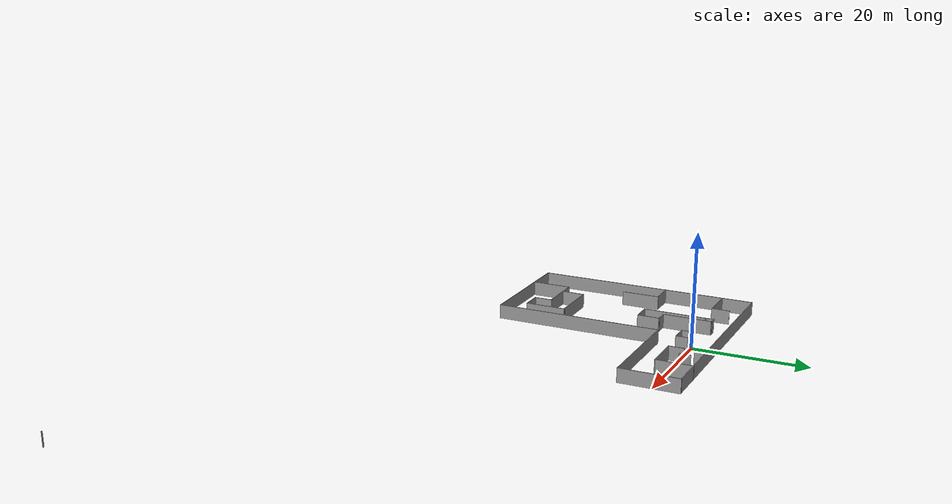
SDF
<?xml version='1.0'?>
<sdf version='1.7'>
  <model name='arena'>
    <pose>28.6745 -32.0851 0 0 -0 0</pose>
    <link name='Wall_1'>
      <collision name='Wall_1_Collision'>
        <geometry>
          <box>
            <size>0.16 0.15 2.5</size>
          </box>
        </geometry>
        <pose>0 0 1.25 0 -0 0</pose>
      </collision>
      <visual name='Wall_1_Visual'>
        <pose>0 0 1.25 0 -0 0</pose>
        <geometry>
          <box>
            <size>0.16 0.15 2.5</size>
          </box>
        </geometry>
        <material>
          <script>
            <uri>file://media/materials/scripts/gazebo.material</uri>
            <name>Gazebo/Grey</name>
          </script>
          <ambient>1 1 1 1</ambient>
        </material>
        <meta>
          <layer>0</layer>
        </meta>
      </visual>
      <pose>49.7622 -36.6706 0 0 -0 0</pose>
    </link>
    <link name='Wall_10'>
      <collision name='Wall_10_Collision'>
        <geometry>
          <box>
            <size>21.5 0.15 2.5</size>
          </box>
        </geometry>
        <pose>0 0 1.25 0 -0 0</pose>
      </collision>
      <visual name='Wall_10_Visual'>
        <pose>0 0 1.25 0 -0 0</pose>
        <geometry>
          <box>
            <size>21.5 0.15 2.5</size>
          </box>
        </geometry>
        <material>
          <script>
            <uri>file://media/materials/scripts/gazebo.material</uri>
            <name>Gazebo/Grey</name>
          </script>
          <ambient>1 1 1 1</ambient>
        </material>
        <meta>
          <layer>0</layer>
        </meta>
      </visual>
      <pose>-38.9557 -3.08205 0 0 -0 0</pose>
    </link>
    <link name='Wall_11'>
      <collision name='Wall_11_Collision'>
        <geometry>
          <box>
            <size>29.5 0.15 2.5</size>
          </box>
        </geometry>
        <pose>0 0 1.25 0 -0 0</pose>
      </collision>
      <visual name='Wall_11_Visual'>
        <pose>0 0 1.25 0 -0 0</pose>
        <geometry>
          <box>
            <size>29.5 0.15 2.5</size>
          </box>
        </geometry>
        <material>
          <script>
            <uri>file://media/materials/scripts/gazebo.material</uri>
            <name>Gazebo/Grey</name>
          </script>
          <ambient>1 1 1 1</ambient>
        </material>
        <meta>
          <layer>0</layer>
        </meta>
      </visual>
      <pose>-28.2807 11.5929 0 0 -0 1.5708</pose>
    </link>
    <link name='Wall_12'>
      <collision name='Wall_12_Collision'>
        <geometry>
          <box>
            <size>19.65 0.15 2.5</size>
          </box>
        </geometry>
        <pose>0 0 1.25 0 -0 0</pose>
      </collision>
      <visual name='Wall_12_Visual'>
        <pose>0 0 1.25 0 -0 0</pose>
        <geometry>
          <box>
            <size>19.65 0.15 2.5</size>
          </box>
        </geometry>
        <material>
          <script>
            <uri>file://media/materials/scripts/gazebo.material</uri>
            <name>Gazebo/Grey</name>
          </script>
          <ambient>1 1 1 1</ambient>
        </material>
        <meta>
          <layer>0</layer>
        </meta>
      </visual>
      <pose>-18.5307 26.2679 0 0 -0 0</pose>
    </link>
    <link name='Wall_15'>
      <collision name='Wall_15_Collision'>
        <geometry>
          <box>
            <size>6.5 0.15 2.5</size>
          </box>
        </geometry>
        <pose>0 0 1.25 0 -0 0</pose>
      </collision>
      <visual name='Wall_15_Visual'>
        <pose>0 0 1.25 0 -0 0</pose>
        <geometry>
          <box>
            <size>6.5 0.15 2.5</size>
          </box>
        </geometry>
        <material>
          <script>
            <uri>file://media/materials/scripts/gazebo.material</uri>
            <name>Gazebo/Grey</name>
          </script>
          <ambient>1 1 1 1</ambient>
        </material>
        <meta>
          <layer>0</layer>
        </meta>
      </visual>
      <pose>-14.8694 33.4956 0 0 -0 -1.5708</pose>
    </link>
    <link name='Wall_16'>
      <collision name='Wall_16_Collision'>
        <geometry>
          <box>
            <size>7 0.15 2.5</size>
          </box>
        </geometry>
        <pose>0 0 1.25 0 -0 0</pose>
      </collision>
      <visual name='Wall_16_Visual'>
        <pose>0 0 1.25 0 -0 0</pose>
        <geometry>
          <box>
            <size>7 0.15 2.5</size>
          </box>
        </geometry>
        <material>
          <script>
            <uri>file://media/materials/scripts/gazebo.material</uri>
            <name>Gazebo/Grey</name>
          </script>
          <ambient>1 1 1 1</ambient>
        </material>
        <meta>
          <layer>0</layer>
        </meta>
      </visual>
      <pose>-18.2944 30.3206 0 0 -0 3.14159</pose>
    </link>
    <link name='Wall_17'>
      <collision name='Wall_17_Collision'>
        <geometry>
          <box>
            <size>2.75 0.15 2.5</size>
          </box>
        </geometry>
        <pose>0 0 1.25 0 -0 0</pose>
      </collision>
      <visual name='Wall_17_Visual'>
        <pose>0 0 1.25 0 -0 0</pose>
        <geometry>
          <box>
            <size>2.75 0.15 2.5</size>
          </box>
        </geometry>
        <material>
          <script>
            <uri>file://media/materials/scripts/gazebo.material</uri>
            <name>Gazebo/Grey</name>
          </script>
          <ambient>1 1 1 1</ambient>
        </material>
        <meta>
          <layer>0</layer>
        </meta>
      </visual>
      <pose>-21.7194 31.6206 0 0 -0 1.5708</pose>
    </link>
    <link name='Wall_19'>
      <collision name='Wall_19_Collision'>
        <geometry>
          <box>
            <size>2 0.15 2.5</size>
          </box>
        </geometry>
        <pose>0 0 1.25 0 -0 0</pose>
      </collision>
      <visual name='Wall_19_Visual'>
        <pose>0 0 1.25 0 -0 0</pose>
        <geometry>
          <box>
            <size>2 0.15 2.5</size>
          </box>
        </geometry>
        <material>
          <script>
            <uri>file://media/materials/scripts/gazebo.material</uri>
            <name>Gazebo/Grey</name>
          </script>
          <ambient>1 1 1 1</ambient>
        </material>
        <meta>
          <layer>0</layer>
        </meta>
      </visual>
      <pose>-21.8804 35.6133 0 0 -0 -1.5708</pose>
    </link>
    <link name='Wall_21'>
      <collision name='Wall_21_Collision'>
        <geometry>
          <box>
            <size>2 0.15 2.5</size>
          </box>
        </geometry>
        <pose>0 0 1.25 0 -0 0</pose>
      </collision>
      <visual name='Wall_21_Visual'>
        <pose>0 0 1.25 0 -0 0</pose>
        <geometry>
          <box>
            <size>2 0.15 2.5</size>
          </box>
        </geometry>
        <material>
          <script>
            <uri>file://media/materials/scripts/gazebo.material</uri>
            <name>Gazebo/Grey</name>
          </script>
          <ambient>1 1 1 1</ambient>
        </material>
        <meta>
          <layer>0</layer>
        </meta>
      </visual>
      <pose>-19.2082 33.8652 0 0 -0 1.5708</pose>
    </link>
    <link name='Wall_22'>
      <collision name='Wall_22_Collision'>
        <geometry>
          <box>
            <size>2 0.15 2.5</size>
          </box>
        </geometry>
        <pose>0 0 1.25 0 -0 0</pose>
      </collision>
      <visual name='Wall_22_Visual'>
        <pose>0 0 1.25 0 -0 0</pose>
        <geometry>
          <box>
            <size>2 0.15 2.5</size>
          </box>
        </geometry>
        <material>
          <script>
            <uri>file://media/materials/scripts/gazebo.material</uri>
            <name>Gazebo/Grey</name>
          </script>
          <ambient>1 1 1 1</ambient>
        </material>
        <meta>
          <layer>0</layer>
        </meta>
      </visual>
      <pose>-18.5542 34.1362 0 0 -0 -0.785398</pose>
    </link>
    <link name='Wall_23'>
      <collision name='Wall_23_Collision'>
        <geometry>
          <box>
            <size>1.56593 0.15 2.5</size>
          </box>
        </geometry>
        <pose>0 0 1.25 0 -0 0</pose>
      </collision>
      <visual name='Wall_23_Visual'>
        <pose>0 0 1.25 0 -0 0</pose>
        <geometry>
          <box>
            <size>1.56593 0.15 2.5</size>
          </box>
        </geometry>
        <material>
          <script>
            <uri>file://media/materials/scripts/gazebo.material</uri>
            <name>Gazebo/Grey</name>
          </script>
          <ambient>1 1 1 1</ambient>
        </material>
        <meta>
          <layer>0</layer>
        </meta>
      </visual>
      <pose>-18.5542 33.2112 0 0 -0 -2.74889</pose>
    </link>
    <link name='Wall_25'>
      <collision name='Wall_25_Collision'>
        <geometry>
          <box>
            <size>2.25 0.15 2.5</size>
          </box>
        </geometry>
        <pose>0 0 1.25 0 -0 0</pose>
      </collision>
      <visual name='Wall_25_Visual'>
        <pose>0 0 1.25 0 -0 0</pose>
        <geometry>
          <box>
            <size>2.25 0.15 2.5</size>
          </box>
        </geometry>
        <material>
          <script>
            <uri>file://media/materials/scripts/gazebo.material</uri>
            <name>Gazebo/Grey</name>
          </script>
          <ambient>1 1 1 1</ambient>
        </material>
        <meta>
          <layer>0</layer>
        </meta>
      </visual>
      <pose>-29.9086 30.9533 0 0 -0 -1.5708</pose>
    </link>
    <link name='Wall_26'>
      <collision name='Wall_26_Collision'>
        <geometry>
          <box>
            <size>3.25 0.15 2.5</size>
          </box>
        </geometry>
        <pose>0 0 1.25 0 -0 0</pose>
      </collision>
      <visual name='Wall_26_Visual'>
        <pose>0 0 1.25 0 -0 0</pose>
        <geometry>
          <box>
            <size>3.25 0.15 2.5</size>
          </box>
        </geometry>
        <material>
          <script>
            <uri>file://media/materials/scripts/gazebo.material</uri>
            <name>Gazebo/Grey</name>
          </script>
          <ambient>1 1 1 1</ambient>
        </material>
        <meta>
          <layer>0</layer>
        </meta>
      </visual>
      <pose>-28.3586 29.9033 0 0 -0 0</pose>
    </link>
    <link name='Wall_27'>
      <collision name='Wall_27_Collision'>
        <geometry>
          <box>
            <size>2.25 0.15 2.5</size>
          </box>
        </geometry>
        <pose>0 0 1.25 0 -0 0</pose>
      </collision>
      <visual name='Wall_27_Visual'>
        <pose>0 0 1.25 0 -0 0</pose>
        <geometry>
          <box>
            <size>2.25 0.15 2.5</size>
          </box>
        </geometry>
        <material>
          <script>
            <uri>file://media/materials/scripts/gazebo.material</uri>
            <name>Gazebo/Grey</name>
          </script>
          <ambient>1 1 1 1</ambient>
        </material>
        <meta>
          <layer>0</layer>
        </meta>
      </visual>
      <pose>-26.8086 30.9533 0 0 -0 1.5708</pose>
    </link>
    <link name='Wall_28'>
      <collision name='Wall_28_Collision'>
        <geometry>
          <box>
            <size>3.25 0.15 2.5</size>
          </box>
        </geometry>
        <pose>0 0 1.25 0 -0 0</pose>
      </collision>
      <visual name='Wall_28_Visual'>
        <pose>0 0 1.25 0 -0 0</pose>
        <geometry>
          <box>
            <size>3.25 0.15 2.5</size>
          </box>
        </geometry>
        <material>
          <script>
            <uri>file://media/materials/scripts/gazebo.material</uri>
            <name>Gazebo/Grey</name>
          </script>
          <ambient>1 1 1 1</ambient>
        </material>
        <meta>
          <layer>0</layer>
        </meta>
      </visual>
      <pose>-28.3586 32.0033 0 0 -0 3.14159</pose>
    </link>
    <link name='Wall_30'>
      <collision name='Wall_30_Collision'>
        <geometry>
          <box>
            <size>6.5 0.15 2.5</size>
          </box>
        </geometry>
        <pose>0 0 1.25 0 -0 0</pose>
      </collision>
      <visual name='Wall_30_Visual'>
        <pose>0 0 1.25 0 -0 0</pose>
        <geometry>
          <box>
            <size>6.5 0.15 2.5</size>
          </box>
        </geometry>
        <material>
          <script>
            <uri>file://media/materials/scripts/gazebo.material</uri>
            <name>Gazebo/Grey</name>
          </script>
          <ambient>1 1 1 1</ambient>
        </material>
        <meta>
          <layer>0</layer>
        </meta>
      </visual>
      <pose>-46.3973 31.1636 0 0 -0 0</pose>
    </link>
    <link name='Wall_31'>
      <collision name='Wall_31_Collision'>
        <geometry>
          <box>
            <size>3.25 0.15 2.5</size>
          </box>
        </geometry>
        <pose>0 0 1.25 0 -0 0</pose>
      </collision>
      <visual name='Wall_31_Visual'>
        <pose>0 0 1.25 0 -0 0</pose>
        <geometry>
          <box>
            <size>3.25 0.15 2.5</size>
          </box>
        </geometry>
        <material>
          <script>
            <uri>file://media/materials/scripts/gazebo.material</uri>
            <name>Gazebo/Grey</name>
          </script>
          <ambient>1 1 1 1</ambient>
        </material>
        <meta>
          <layer>0</layer>
        </meta>
      </visual>
      <pose>-43.2223 32.7136 0 0 -0 1.5708</pose>
    </link>
    <link name='Wall_33'>
      <collision name='Wall_33_Collision'>
        <geometry>
          <box>
            <size>11.25 0.15 2.5</size>
          </box>
        </geometry>
        <pose>0 0 1.25 0 -0 0</pose>
      </collision>
      <visual name='Wall_33_Visual'>
        <pose>0 0 1.25 0 -0 0</pose>
        <geometry>
          <box>
            <size>11.25 0.15 2.5</size>
          </box>
        </geometry>
        <material>
          <script>
            <uri>file://media/materials/scripts/gazebo.material</uri>
            <name>Gazebo/Grey</name>
          </script>
          <ambient>1 1 1 1</ambient>
        </material>
        <meta>
          <layer>0</layer>
        </meta>
      </visual>
      <pose>-37.6341 26.1853 0 0 -0 -1.5708</pose>
    </link>
    <link name='Wall_34'>
      <collision name='Wall_34_Collision'>
        <geometry>
          <box>
            <size>3.75 0.15 2.5</size>
          </box>
        </geometry>
        <pose>0 0 1.25 0 -0 0</pose>
      </collision>
      <visual name='Wall_34_Visual'>
        <pose>0 0 1.25 0 -0 0</pose>
        <geometry>
          <box>
            <size>3.75 0.15 2.5</size>
          </box>
        </geometry>
        <material>
          <script>
            <uri>file://media/materials/scripts/gazebo.material</uri>
            <name>Gazebo/Grey</name>
          </script>
          <ambient>1 1 1 1</ambient>
        </material>
        <meta>
          <layer>0</layer>
        </meta>
      </visual>
      <pose>-35.8341 20.6353 0 0 -0 0</pose>
    </link>
    <link name='Wall_35'>
      <collision name='Wall_35_Collision'>
        <geometry>
          <box>
            <size>4 0.15 2.5</size>
          </box>
        </geometry>
        <pose>0 0 1.25 0 -0 0</pose>
      </collision>
      <visual name='Wall_35_Visual'>
        <pose>0 0 1.25 0 -0 0</pose>
        <geometry>
          <box>
            <size>4 0.15 2.5</size>
          </box>
        </geometry>
        <material>
          <script>
            <uri>file://media/materials/scripts/gazebo.material</uri>
            <name>Gazebo/Grey</name>
          </script>
          <ambient>1 1 1 1</ambient>
        </material>
        <meta>
          <layer>0</layer>
        </meta>
      </visual>
      <pose>-34.0341 22.5603 0 0 -0 1.5708</pose>
    </link>
    <link name='Wall_36'>
      <collision name='Wall_36_Collision'>
        <geometry>
          <box>
            <size>2.5 0.15 2.5</size>
          </box>
        </geometry>
        <pose>0 0 1.25 0 -0 0</pose>
      </collision>
      <visual name='Wall_36_Visual'>
        <pose>0 0 1.25 0 -0 0</pose>
        <geometry>
          <box>
            <size>2.5 0.15 2.5</size>
          </box>
        </geometry>
        <material>
          <script>
            <uri>file://media/materials/scripts/gazebo.material</uri>
            <name>Gazebo/Grey</name>
          </script>
          <ambient>1 1 1 1</ambient>
        </material>
        <meta>
          <layer>0</layer>
        </meta>
      </visual>
      <pose>-35.2091 24.4853 0 0 -0 3.14159</pose>
    </link>
    <link name='Wall_37'>
      <collision name='Wall_37_Collision'>
        <geometry>
          <box>
            <size>8.75 0.15 2.5</size>
          </box>
        </geometry>
        <pose>0 0 1.25 0 -0 0</pose>
      </collision>
      <visual name='Wall_37_Visual'>
        <pose>0 0 1.25 0 -0 0</pose>
        <geometry>
          <box>
            <size>8.75 0.15 2.5</size>
          </box>
        </geometry>
        <material>
          <script>
            <uri>file://media/materials/scripts/gazebo.material</uri>
            <name>Gazebo/Grey</name>
          </script>
          <ambient>1 1 1 1</ambient>
        </material>
        <meta>
          <layer>0</layer>
        </meta>
      </visual>
      <pose>-36.3841 28.7853 0 0 -0 1.5708</pose>
    </link>
    <link name='Wall_38'>
      <collision name='Wall_38_Collision'>
        <geometry>
          <box>
            <size>1.5 0.15 2.5</size>
          </box>
        </geometry>
        <pose>0 0 1.25 0 -0 0</pose>
      </collision>
      <visual name='Wall_38_Visual'>
        <pose>0 0 1.25 0 -0 0</pose>
        <geometry>
          <box>
            <size>1.5 0.15 2.5</size>
          </box>
        </geometry>
        <material>
          <script>
            <uri>file://media/materials/scripts/gazebo.material</uri>
            <name>Gazebo/Grey</name>
          </script>
          <ambient>1 1 1 1</ambient>
        </material>
        <meta>
          <layer>0</layer>
        </meta>
      </visual>
      <pose>-37.0591 33.0853 0 0 -0 3.14159</pose>
    </link>
    <link name='Wall_39'>
      <collision name='Wall_39_Collision'>
        <geometry>
          <box>
            <size>1.5037 0.15 2.5</size>
          </box>
        </geometry>
        <pose>0 0 1.25 0 -0 0</pose>
      </collision>
      <visual name='Wall_39_Visual'>
        <pose>0 0 1.25 0 -0 0</pose>
        <geometry>
          <box>
            <size>1.5037 0.15 2.5</size>
          </box>
        </geometry>
        <material>
          <script>
            <uri>file://media/materials/scripts/gazebo.material</uri>
            <name>Gazebo/Grey</name>
          </script>
          <ambient>1 1 1 1</ambient>
        </material>
        <meta>
          <layer>0</layer>
        </meta>
      </visual>
      <pose>-37.6841 32.4103 0 0 -0 -1.49686</pose>
    </link>
    <link name='Wall_4'>
      <collision name='Wall_4_Collision'>
        <geometry>
          <box>
            <size>10.5 0.15 2.5</size>
          </box>
        </geometry>
        <pose>0 0 1.25 0 -0 0</pose>
      </collision>
      <visual name='Wall_4_Visual'>
        <pose>0 0 1.25 0 -0 0</pose>
        <geometry>
          <box>
            <size>10.5 0.15 2.5</size>
          </box>
        </geometry>
        <material>
          <script>
            <uri>file://media/materials/scripts/gazebo.material</uri>
            <name>Gazebo/Grey</name>
          </script>
          <ambient>1 1 1 1</ambient>
        </material>
        <meta>
          <layer>0</layer>
        </meta>
      </visual>
      <pose>-8.78066 31.4429 0 0 -0 1.5708</pose>
    </link>
    <link name='Wall_42'>
      <collision name='Wall_42_Collision'>
        <geometry>
          <box>
            <size>7 0.15 2.5</size>
          </box>
        </geometry>
        <pose>0 0 1.25 0 -0 0</pose>
      </collision>
      <visual name='Wall_42_Visual'>
        <pose>0 0 1.25 0 -0 0</pose>
        <geometry>
          <box>
            <size>7 0.15 2.5</size>
          </box>
        </geometry>
        <material>
          <script>
            <uri>file://media/materials/scripts/gazebo.material</uri>
            <name>Gazebo/Grey</name>
          </script>
          <ambient>1 1 1 1</ambient>
        </material>
        <meta>
          <layer>0</layer>
        </meta>
      </visual>
      <pose>-43.2222 0.439476 0 0 -0 1.5708</pose>
    </link>
    <link name='Wall_43'>
      <collision name='Wall_43_Collision'>
        <geometry>
          <box>
            <size>8.5 0.15 2.5</size>
          </box>
        </geometry>
        <pose>0 0 1.25 0 -0 0</pose>
      </collision>
      <visual name='Wall_43_Visual'>
        <pose>0 0 1.25 0 -0 0</pose>
        <geometry>
          <box>
            <size>8.5 0.15 2.5</size>
          </box>
        </geometry>
        <material>
          <script>
            <uri>file://media/materials/scripts/gazebo.material</uri>
            <name>Gazebo/Grey</name>
          </script>
          <ambient>1 1 1 1</ambient>
        </material>
        <meta>
          <layer>0</layer>
        </meta>
      </visual>
      <pose>-39.0472 3.86448 0 0 -0 0</pose>
    </link>
    <link name='Wall_44'>
      <collision name='Wall_44_Collision'>
        <geometry>
          <box>
            <size>3.25 0.15 2.5</size>
          </box>
        </geometry>
        <pose>0 0 1.25 0 -0 0</pose>
      </collision>
      <visual name='Wall_44_Visual'>
        <pose>0 0 1.25 0 -0 0</pose>
        <geometry>
          <box>
            <size>3.25 0.15 2.5</size>
          </box>
        </geometry>
        <material>
          <script>
            <uri>file://media/materials/scripts/gazebo.material</uri>
            <name>Gazebo/Grey</name>
          </script>
          <ambient>1 1 1 1</ambient>
        </material>
        <meta>
          <layer>0</layer>
        </meta>
      </visual>
      <pose>-34.8722 2.31448 0 0 -0 -1.5708</pose>
    </link>
    <link name='Wall_45'>
      <collision name='Wall_45_Collision'>
        <geometry>
          <box>
            <size>3.75 0.15 2.5</size>
          </box>
        </geometry>
        <pose>0 0 1.25 0 -0 0</pose>
      </collision>
      <visual name='Wall_45_Visual'>
        <pose>0 0 1.25 0 -0 0</pose>
        <geometry>
          <box>
            <size>3.75 0.15 2.5</size>
          </box>
        </geometry>
        <material>
          <script>
            <uri>file://media/materials/scripts/gazebo.material</uri>
            <name>Gazebo/Grey</name>
          </script>
          <ambient>1 1 1 1</ambient>
        </material>
        <meta>
          <layer>0</layer>
        </meta>
      </visual>
      <pose>-33.0722 0.764477 0 0 -0 0</pose>
    </link>
    <link name='Wall_46'>
      <collision name='Wall_46_Collision'>
        <geometry>
          <box>
            <size>7.25 0.15 2.5</size>
          </box>
        </geometry>
        <pose>0 0 1.25 0 -0 0</pose>
      </collision>
      <visual name='Wall_46_Visual'>
        <pose>0 0 1.25 0 -0 0</pose>
        <geometry>
          <box>
            <size>7.25 0.15 2.5</size>
          </box>
        </geometry>
        <material>
          <script>
            <uri>file://media/materials/scripts/gazebo.material</uri>
            <name>Gazebo/Grey</name>
          </script>
          <ambient>1 1 1 1</ambient>
        </material>
        <meta>
          <layer>0</layer>
        </meta>
      </visual>
      <pose>-31.2722 4.31448 0 0 -0 1.5708</pose>
    </link>
    <link name='Wall_47'>
      <collision name='Wall_47_Collision'>
        <geometry>
          <box>
            <size>9.25 0.15 2.5</size>
          </box>
        </geometry>
        <pose>0 0 1.25 0 -0 0</pose>
      </collision>
      <visual name='Wall_47_Visual'>
        <pose>0 0 1.25 0 -0 0</pose>
        <geometry>
          <box>
            <size>9.25 0.15 2.5</size>
          </box>
        </geometry>
        <material>
          <script>
            <uri>file://media/materials/scripts/gazebo.material</uri>
            <name>Gazebo/Grey</name>
          </script>
          <ambient>1 1 1 1</ambient>
        </material>
        <meta>
          <layer>0</layer>
        </meta>
      </visual>
      <pose>-35.8222 7.86448 0 0 -0 3.14159</pose>
    </link>
    <link name='Wall_48'>
      <collision name='Wall_48_Collision'>
        <geometry>
          <box>
            <size>4 0.15 2.5</size>
          </box>
        </geometry>
        <pose>0 0 1.25 0 -0 0</pose>
      </collision>
      <visual name='Wall_48_Visual'>
        <pose>0 0 1.25 0 -0 0</pose>
        <geometry>
          <box>
            <size>4 0.15 2.5</size>
          </box>
        </geometry>
        <material>
          <script>
            <uri>file://media/materials/scripts/gazebo.material</uri>
            <name>Gazebo/Grey</name>
          </script>
          <ambient>1 1 1 1</ambient>
        </material>
        <meta>
          <layer>0</layer>
        </meta>
      </visual>
      <pose>-40.3722 5.93948 0 0 -0 -1.5708</pose>
    </link>
    <link name='Wall_5'>
      <collision name='Wall_5_Collision'>
        <geometry>
          <box>
            <size>41 0.15 2.5</size>
          </box>
        </geometry>
        <pose>0 0 1.25 0 -0 0</pose>
      </collision>
      <visual name='Wall_5_Visual'>
        <pose>0 0 1.25 0 -0 0</pose>
        <geometry>
          <box>
            <size>41 0.15 2.5</size>
          </box>
        </geometry>
        <material>
          <script>
            <uri>file://media/materials/scripts/gazebo.material</uri>
            <name>Gazebo/Grey</name>
          </script>
          <ambient>1 1 1 1</ambient>
        </material>
        <meta>
          <layer>0</layer>
        </meta>
      </visual>
      <pose>-29.2057 36.6179 0 0 -0 3.14159</pose>
    </link>
    <link name='Wall_54'>
      <collision name='Wall_54_Collision'>
        <geometry>
          <box>
            <size>4.75 0.15 2.5</size>
          </box>
        </geometry>
        <pose>0 0 1.25 0 -0 0</pose>
      </collision>
      <visual name='Wall_54_Visual'>
        <pose>0 0 1.25 0 -0 0</pose>
        <geometry>
          <box>
            <size>4.75 0.15 2.5</size>
          </box>
        </geometry>
        <material>
          <script>
            <uri>file://media/materials/scripts/gazebo.material</uri>
            <name>Gazebo/Grey</name>
          </script>
          <ambient>1 1 1 1</ambient>
        </material>
        <meta>
          <layer>0</layer>
        </meta>
      </visual>
      <pose>-47.4672 20.4832 0 0 -0 0</pose>
    </link>
    <link name='Wall_55'>
      <collision name='Wall_55_Collision'>
        <geometry>
          <box>
            <size>6.75 0.15 2.5</size>
          </box>
        </geometry>
        <pose>0 0 1.25 0 -0 0</pose>
      </collision>
      <visual name='Wall_55_Visual'>
        <pose>0 0 1.25 0 -0 0</pose>
        <geometry>
          <box>
            <size>6.75 0.15 2.5</size>
          </box>
        </geometry>
        <material>
          <script>
            <uri>file://media/materials/scripts/gazebo.material</uri>
            <name>Gazebo/Grey</name>
          </script>
          <ambient>1 1 1 1</ambient>
        </material>
        <meta>
          <layer>0</layer>
        </meta>
      </visual>
      <pose>-45.1672 17.1832 0 0 -0 -1.5708</pose>
    </link>
    <link name='Wall_6'>
      <collision name='Wall_6_Collision'>
        <geometry>
          <box>
            <size>10.75 0.15 2.5</size>
          </box>
        </geometry>
        <pose>0 0 1.25 0 -0 0</pose>
      </collision>
      <visual name='Wall_6_Visual'>
        <pose>0 0 1.25 0 -0 0</pose>
        <geometry>
          <box>
            <size>10.75 0.15 2.5</size>
          </box>
        </geometry>
        <material>
          <script>
            <uri>file://media/materials/scripts/gazebo.material</uri>
            <name>Gazebo/Grey</name>
          </script>
          <ambient>1 1 1 1</ambient>
        </material>
        <meta>
          <layer>0</layer>
        </meta>
      </visual>
      <pose>-49.6307 31.3179 0 0 -0 -1.5708</pose>
    </link>
    <link name='Wall_9'>
      <collision name='Wall_9_Collision'>
        <geometry>
          <box>
            <size>29.25 0.15 2.5</size>
          </box>
        </geometry>
        <pose>0 0 1.25 0 -0 0</pose>
      </collision>
      <visual name='Wall_9_Visual'>
        <pose>0 0 1.25 0 -0 0</pose>
        <geometry>
          <box>
            <size>29.25 0.15 2.5</size>
          </box>
        </geometry>
        <material>
          <script>
            <uri>file://media/materials/scripts/gazebo.material</uri>
            <name>Gazebo/Grey</name>
          </script>
          <ambient>1 1 1 1</ambient>
        </material>
        <meta>
          <layer>0</layer>
        </meta>
      </visual>
      <pose>-49.6307 11.4679 0 0 -0 -1.5708</pose>
    </link>
    <static>1</static>
  </model>
</sdf>
